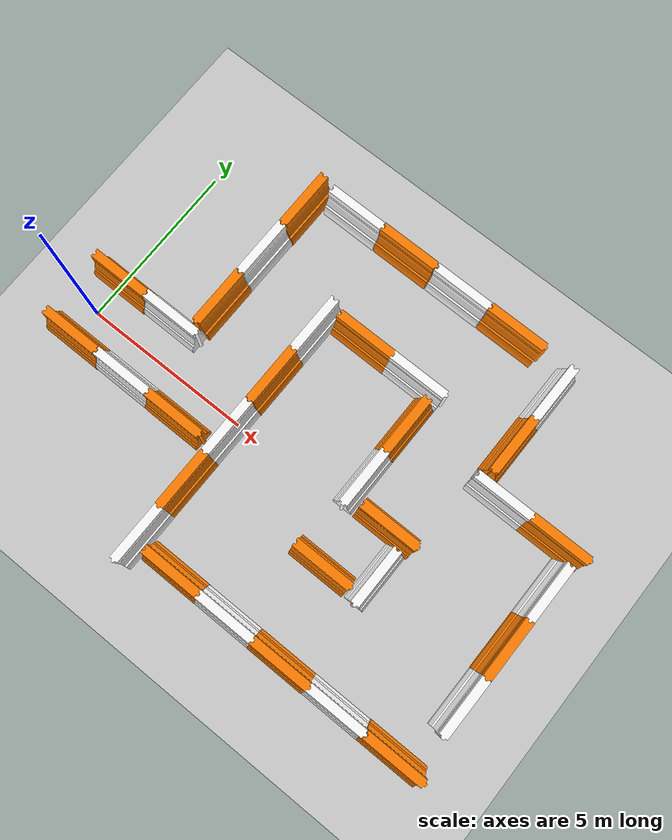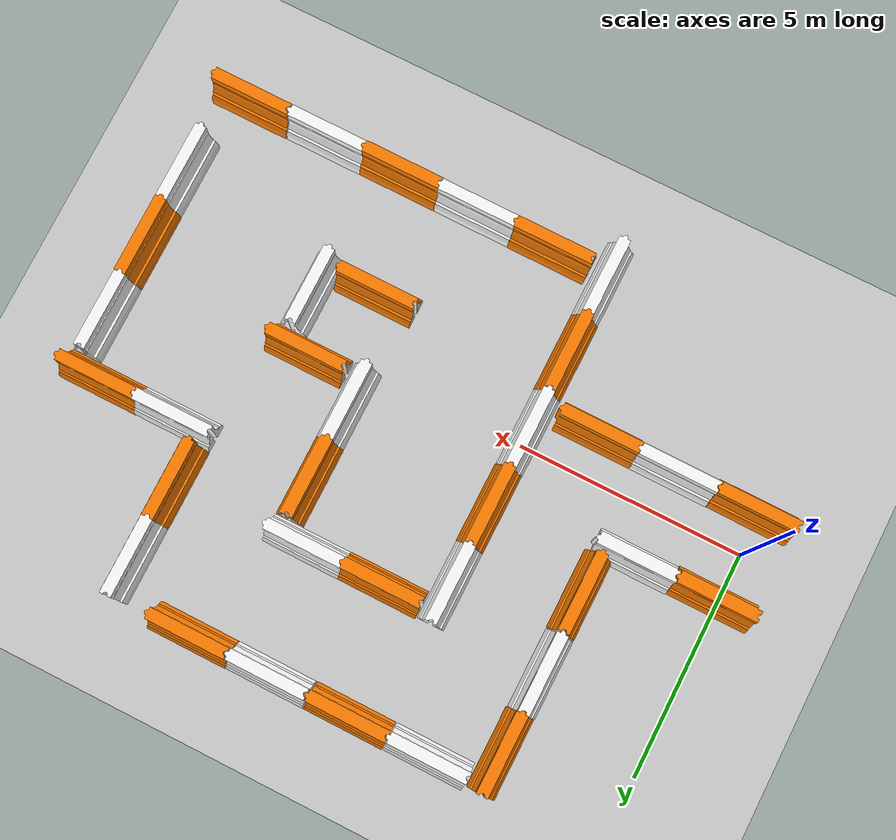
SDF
<sdf version="1.7">
 <world name="default">
  <light name="sun" type="directional">
   <pose>0 0 10 0 -0 0</pose>
   <diffuse>0.8 0.8 0.8 1</diffuse>
   <specular>0.2 0.2 0.2 1</specular>
   <attenuation>
    <range>1000</range>
    <constant>0.9</constant>
    <linear>0.01</linear>
    <quadratic>0.001</quadratic>
   </attenuation>
   <direction>-0.5 0.1 -0.9</direction>
   <spot><inner_angle>0</inner_angle><outer_angle>0</outer_angle><falloff>0</falloff></spot>
  </light>
  <model name="ground_plane">
   <static>1</static>
   <link name="link">
    <collision name="collision">
     <geometry><plane><normal>0 0 1</normal><size>100 100</size></plane></geometry>
     <surface><friction><ode><mu>100</mu><mu2>50</mu2></ode></friction></surface>
    </collision>
    <visual name="visual">
     <cast_shadows>0</cast_shadows>
     <geometry><plane><normal>0 0 1</normal><size>100 100</size></plane></geometry>
     <material>
      <script><uri>file://media/materials/scripts/gazebo.material</uri><name>Gazebo/Grey</name></script>
     </material>
    </visual>
   </link>
  </model>
  <gravity>0 0 -9.8</gravity>
  <magnetic_field>6e-06 2.3e-05 -4.2e-05</magnetic_field>
  <atmosphere type="adiabatic"/>
  <physics type="ode">
   <max_step_size>0.001</max_step_size>
   <real_time_factor>1</real_time_factor>
   <real_time_update_rate>1000</real_time_update_rate>
  </physics>
  <scene><ambient>0.4 0.4 0.4 1</ambient><background>0.7 0.7 0.7 1</background><shadows>0</shadows></scene>
  <audio><device>default</device></audio>
  <spherical_coordinates>
   <surface_model>EARTH_WGS84</surface_model>
   <latitude_deg>0</latitude_deg>
   <longitude_deg>0</longitude_deg>
   <elevation>0</elevation>
   <heading_deg>0</heading_deg>
  </spherical_coordinates>
  <model name="drc_practice_organge_jersey_barrier_clone">
   <static>1</static>
   <link name="link">
    <visual name="visual">
     <geometry>
      <mesh><uri>model://drc_practice_orange_jersey_barrier/meshes/jersey_barrier.dae</uri></mesh>
     </geometry>
    </visual>
    <collision name="collision">
     <geometry>
      <mesh><uri>model://drc_practice_orange_jersey_barrier/meshes/jersey_barrier.dae</uri></mesh>
     </geometry>
    </collision>
   </link>
   <pose>0.143463 1.08854 0 0 -0 1.5707</pose>
  </model>
  <model name="drc_practice_organge_jersey_barrier_clone_0">
   <static>1</static>
   <link name="link">
    <visual name="visual">
     <geometry>
      <mesh><uri>model://drc_practice_orange_jersey_barrier/meshes/jersey_barrier.dae</uri></mesh>
     </geometry>
    </visual>
    <collision name="collision">
     <geometry>
      <mesh><uri>model://drc_practice_orange_jersey_barrier/meshes/jersey_barrier.dae</uri></mesh>
     </geometry>
    </collision>
   </link>
   <pose>0.168443 -0.887944 0 0 -0 1.5707</pose>
  </model>
  <model name="drc_practice_white_jersey_barrier_clone">
   <static>1</static>
   <link name="link">
    <visual name="visual">
     <geometry>
      <mesh><uri>model://drc_practice_white_jersey_barrier/meshes/jersey_barrier.dae</uri></mesh>
     </geometry>
    </visual>
    <collision name="collision">
     <geometry>
      <mesh><uri>model://drc_practice_white_jersey_barrier/meshes/jersey_barrier.dae</uri></mesh>
     </geometry>
    </collision>
   </link>
   <pose>1.90595 1.10096 0 0 -0 1.5707</pose>
  </model>
  <model name="drc_practice_white_jersey_barrier_clone_0">
   <static>1</static>
   <link name="link">
    <visual name="visual">
     <geometry>
      <mesh><uri>model://drc_practice_white_jersey_barrier/meshes/jersey_barrier.dae</uri></mesh>
     </geometry>
    </visual>
    <collision name="collision">
     <geometry>
      <mesh><uri>model://drc_practice_white_jersey_barrier/meshes/jersey_barrier.dae</uri></mesh>
     </geometry>
    </collision>
   </link>
   <pose>1.9309 -0.888115 0 0 -0 1.5707</pose>
  </model>
  <model name="drc_practice_organge_jersey_barrier_clone_0_clone">
   <static>1</static>
   <link name="link">
    <visual name="visual">
     <geometry>
      <mesh><uri>model://drc_practice_orange_jersey_barrier/meshes/jersey_barrier.dae</uri></mesh>
     </geometry>
    </visual>
    <collision name="collision">
     <geometry>
      <mesh><uri>model://drc_practice_orange_jersey_barrier/meshes/jersey_barrier.dae</uri></mesh>
     </geometry>
    </collision>
   </link>
   <pose>3.6934 -0.899313 0 0 -0 1.5707</pose>
  </model>
  <model name="drc_practice_white_jersey_barrier">
   <static>1</static>
   <link name="link">
    <visual name="visual">
     <geometry>
      <mesh><uri>model://drc_practice_white_jersey_barrier/meshes/jersey_barrier.dae</uri></mesh>
     </geometry>
    </visual>
    <collision name="collision">
     <geometry>
      <mesh><uri>model://drc_practice_white_jersey_barrier/meshes/jersey_barrier.dae</uri></mesh>
     </geometry>
    </collision>
   </link>
   <pose>4.98358 -0.286652 0 0 -0 0</pose>
  </model>
  <model name="drc_practice_organge_jersey_barrier">
   <static>1</static>
   <link name="link">
    <visual name="visual">
     <geometry>
      <mesh><uri>model://drc_practice_orange_jersey_barrier/meshes/jersey_barrier.dae</uri></mesh>
     </geometry>
    </visual>
    <collision name="collision">
     <geometry>
      <mesh><uri>model://drc_practice_orange_jersey_barrier/meshes/jersey_barrier.dae</uri></mesh>
     </geometry>
    </collision>
   </link>
   <pose>2.58701 2.21833 0 0 -0 0</pose>
  </model>
  <model name="drc_practice_organge_jersey_barrier_clone_1">
   <static>1</static>
   <link name="link">
    <visual name="visual">
     <geometry>
      <mesh><uri>model://drc_practice_orange_jersey_barrier/meshes/jersey_barrier.dae</uri></mesh>
     </geometry>
    </visual>
    <collision name="collision">
     <geometry>
      <mesh><uri>model://drc_practice_orange_jersey_barrier/meshes/jersey_barrier.dae</uri></mesh>
     </geometry>
    </collision>
   </link>
   <pose>5.00371 1.47704 0 0 -0 0</pose>
  </model>
  <model name="drc_practice_white_jersey_barrier_clone_1">
   <static>1</static>
   <link name="link">
    <visual name="visual">
     <geometry>
      <mesh><uri>model://drc_practice_white_jersey_barrier/meshes/jersey_barrier.dae</uri></mesh>
     </geometry>
    </visual>
    <collision name="collision">
     <geometry>
      <mesh><uri>model://drc_practice_white_jersey_barrier/meshes/jersey_barrier.dae</uri></mesh>
     </geometry>
    </collision>
   </link>
   <pose>5.01101 3.23606 0 0 -0 0</pose>
  </model>
  <model name="drc_practice_white_jersey_barrier_clone_2">
   <static>1</static>
   <link name="link">
    <visual name="visual">
     <geometry>
      <mesh><uri>model://drc_practice_white_jersey_barrier/meshes/jersey_barrier.dae</uri></mesh>
     </geometry>
    </visual>
    <collision name="collision">
     <geometry>
      <mesh><uri>model://drc_practice_white_jersey_barrier/meshes/jersey_barrier.dae</uri></mesh>
     </geometry>
    </collision>
   </link>
   <pose>2.59255 3.99864 0 0 -0 0</pose>
  </model>
  <model name="drc_practice_organge_jersey_barrier_clone_2">
   <static>1</static>
   <link name="link">
    <visual name="visual">
     <geometry>
      <mesh><uri>model://drc_practice_orange_jersey_barrier/meshes/jersey_barrier.dae</uri></mesh>
     </geometry>
    </visual>
    <collision name="collision">
     <geometry>
      <mesh><uri>model://drc_practice_orange_jersey_barrier/meshes/jersey_barrier.dae</uri></mesh>
     </geometry>
    </collision>
   </link>
   <pose>2.61898 5.7601 0 0 -0 0</pose>
  </model>
  <model name="drc_practice_white_jersey_barrier_clone_clone">
   <static>1</static>
   <link name="link">
    <visual name="visual">
     <geometry>
      <mesh><uri>model://drc_practice_white_jersey_barrier/meshes/jersey_barrier.dae</uri></mesh>
     </geometry>
    </visual>
    <collision name="collision">
     <geometry>
      <mesh><uri>model://drc_practice_white_jersey_barrier/meshes/jersey_barrier.dae</uri></mesh>
     </geometry>
    </collision>
   </link>
   <pose>3.86178 6.45805 0 0 -0 1.5707</pose>
  </model>
  <model name="drc_practice_organge_jersey_barrier_clone_clone">
   <static>1</static>
   <link name="link">
    <visual name="visual">
     <geometry>
      <mesh><uri>model://drc_practice_orange_jersey_barrier/meshes/jersey_barrier.dae</uri></mesh>
     </geometry>
    </visual>
    <collision name="collision">
     <geometry>
      <mesh><uri>model://drc_practice_orange_jersey_barrier/meshes/jersey_barrier.dae</uri></mesh>
     </geometry>
    </collision>
   </link>
   <pose>5.6362 6.45792 0 0 -0 1.5707</pose>
  </model>
  <model name="drc_practice_organge_jersey_barrier_clone_clone_0">
   <static>1</static>
   <link name="link">
    <visual name="visual">
     <geometry>
      <mesh><uri>model://drc_practice_orange_jersey_barrier/meshes/jersey_barrier.dae</uri></mesh>
     </geometry>
    </visual>
    <collision name="collision">
     <geometry>
      <mesh><uri>model://drc_practice_orange_jersey_barrier/meshes/jersey_barrier.dae</uri></mesh>
     </geometry>
    </collision>
   </link>
   <pose>6.22374 3.83835 0 0 -0 1.5707</pose>
  </model>
  <model name="drc_practice_white_jersey_barrier_clone_clone_clone">
   <static>1</static>
   <link name="link">
    <visual name="visual">
     <geometry>
      <mesh><uri>model://drc_practice_white_jersey_barrier/meshes/jersey_barrier.dae</uri></mesh>
     </geometry>
    </visual>
    <collision name="collision">
     <geometry>
      <mesh><uri>model://drc_practice_white_jersey_barrier/meshes/jersey_barrier.dae</uri></mesh>
     </geometry>
    </collision>
   </link>
   <pose>7.42013 6.45398 0 0 -0 1.5707</pose>
  </model>
  <model name="drc_practice_organge_jersey_barrier_clone_clone_0_clone">
   <static>1</static>
   <link name="link">
    <visual name="visual">
     <geometry>
      <mesh><uri>model://drc_practice_orange_jersey_barrier/meshes/jersey_barrier.dae</uri></mesh>
     </geometry>
    </visual>
    <collision name="collision">
     <geometry>
      <mesh><uri>model://drc_practice_orange_jersey_barrier/meshes/jersey_barrier.dae</uri></mesh>
     </geometry>
    </collision>
   </link>
   <pose>9.19459 6.45381 0 0 -0 1.5707</pose>
  </model>
  <model name="drc_practice_white_jersey_barrier_clone_clone_clone_clone">
   <static>1</static>
   <link name="link">
    <visual name="visual">
     <geometry>
      <mesh><uri>model://drc_practice_white_jersey_barrier/meshes/jersey_barrier.dae</uri></mesh>
     </geometry>
    </visual>
    <collision name="collision">
     <geometry>
      <mesh><uri>model://drc_practice_white_jersey_barrier/meshes/jersey_barrier.dae</uri></mesh>
     </geometry>
    </collision>
   </link>
   <pose>7.96884 3.83607 0 0 -0 1.5707</pose>
  </model>
  <model name="drc_practice_organge_jersey_barrier_clone_1_clone">
   <static>1</static>
   <link name="link">
    <visual name="visual">
     <geometry>
      <mesh><uri>model://drc_practice_orange_jersey_barrier/meshes/jersey_barrier.dae</uri></mesh>
     </geometry>
    </visual>
    <collision name="collision">
     <geometry>
      <mesh><uri>model://drc_practice_orange_jersey_barrier/meshes/jersey_barrier.dae</uri></mesh>
     </geometry>
    </collision>
   </link>
   <pose>8.52764 2.62676 0 0 -0 0</pose>
  </model>
  <model name="drc_practice_white_jersey_barrier_clone_1_clone">
   <static>1</static>
   <link name="link">
    <visual name="visual">
     <geometry>
      <mesh><uri>model://drc_practice_white_jersey_barrier/meshes/jersey_barrier.dae</uri></mesh>
     </geometry>
    </visual>
    <collision name="collision">
     <geometry>
      <mesh><uri>model://drc_practice_white_jersey_barrier/meshes/jersey_barrier.dae</uri></mesh>
     </geometry>
    </collision>
   </link>
   <pose>10.9886 5.65587 0 0 -0 0</pose>
  </model>
  <model name="drc_practice_white_jersey_barrier_clone_1_clone_0">
   <static>1</static>
   <link name="link">
    <visual name="visual">
     <geometry>
      <mesh><uri>model://drc_practice_white_jersey_barrier/meshes/jersey_barrier.dae</uri></mesh>
     </geometry>
    </visual>
    <collision name="collision">
     <geometry>
      <mesh><uri>model://drc_practice_white_jersey_barrier/meshes/jersey_barrier.dae</uri></mesh>
     </geometry>
    </collision>
   </link>
   <pose>8.52344 0.879852 0 0 -0 0</pose>
  </model>
  <model name="drc_practice_organge_jersey_barrier_clone_1_clone_clone">
   <static>1</static>
   <link name="link">
    <visual name="visual">
     <geometry>
      <mesh><uri>model://drc_practice_orange_jersey_barrier/meshes/jersey_barrier.dae</uri></mesh>
     </geometry>
    </visual>
    <collision name="collision">
     <geometry>
      <mesh><uri>model://drc_practice_orange_jersey_barrier/meshes/jersey_barrier.dae</uri></mesh>
     </geometry>
    </collision>
   </link>
   <pose>10.9782 3.91068 0 0 -0 0</pose>
  </model>
  <model name="drc_practice_white_jersey_barrier_clone_clone_clone_clone_clone">
   <static>1</static>
   <link name="link">
    <visual name="visual">
     <geometry>
      <mesh><uri>model://drc_practice_white_jersey_barrier/meshes/jersey_barrier.dae</uri></mesh>
     </geometry>
    </visual>
    <collision name="collision">
     <geometry>
      <mesh><uri>model://drc_practice_white_jersey_barrier/meshes/jersey_barrier.dae</uri></mesh>
     </geometry>
    </collision>
   </link>
   <pose>11.5435 2.70474 0 0 -0 1.5707</pose>
  </model>
  <model name="drc_practice_organge_jersey_barrier_clone_clone_0_clone_0">
   <static>1</static>
   <link name="link">
    <visual name="visual">
     <geometry>
      <mesh><uri>model://drc_practice_orange_jersey_barrier/meshes/jersey_barrier.dae</uri></mesh>
     </geometry>
    </visual>
    <collision name="collision">
     <geometry>
      <mesh><uri>model://drc_practice_orange_jersey_barrier/meshes/jersey_barrier.dae</uri></mesh>
     </geometry>
    </collision>
   </link>
   <pose>9.76383 0.301551 0 0 -0 1.5707</pose>
  </model>
  <model name="drc_practice_organge_jersey_barrier_clone_clone_0_clone_0_clone_0">
   <static>1</static>
   <link name="link">
    <visual name="visual">
     <geometry>
      <mesh><uri>model://drc_practice_orange_jersey_barrier/meshes/jersey_barrier.dae</uri></mesh>
     </geometry>
    </visual>
    <collision name="collision">
     <geometry>
      <mesh><uri>model://drc_practice_orange_jersey_barrier/meshes/jersey_barrier.dae</uri></mesh>
     </geometry>
    </collision>
   </link>
   <pose>13.2897 2.70144 0 0 -0 1.5707</pose>
  </model>
  <model name="drc_practice_white_jersey_barrier_clone_1_clone_0_clone">
   <static>1</static>
   <link name="link">
    <visual name="visual">
     <geometry>
      <mesh><uri>model://drc_practice_white_jersey_barrier/meshes/jersey_barrier.dae</uri></mesh>
     </geometry>
    </visual>
    <collision name="collision">
     <geometry>
      <mesh><uri>model://drc_practice_white_jersey_barrier/meshes/jersey_barrier.dae</uri></mesh>
     </geometry>
    </collision>
   </link>
   <pose>13.8659 1.49085 0 0 -0 0</pose>
  </model>
  <model name="drc_practice_white_jersey_barrier_clone_1_clone_0_clone_0">
   <static>1</static>
   <link name="link">
    <visual name="visual">
     <geometry>
      <mesh><uri>model://drc_practice_white_jersey_barrier/meshes/jersey_barrier.dae</uri></mesh>
     </geometry>
    </visual>
    <collision name="collision">
     <geometry>
      <mesh><uri>model://drc_practice_white_jersey_barrier/meshes/jersey_barrier.dae</uri></mesh>
     </geometry>
    </collision>
   </link>
   <pose>10.2931 -0.89452 0 0 -0 0</pose>
  </model>
  <model name="drc_practice_organge_jersey_barrier_clone_1_clone_clone_0">
   <static>1</static>
   <link name="link">
    <visual name="visual">
     <geometry>
      <mesh><uri>model://drc_practice_orange_jersey_barrier/meshes/jersey_barrier.dae</uri></mesh>
     </geometry>
    </visual>
    <collision name="collision">
     <geometry>
      <mesh><uri>model://drc_practice_orange_jersey_barrier/meshes/jersey_barrier.dae</uri></mesh>
     </geometry>
    </collision>
   </link>
   <pose>13.8644 -0.25431 0 0 -0 0</pose>
  </model>
  <model name="drc_practice_white_jersey_barrier_clone_1_clone_0_clone_clone">
   <static>1</static>
   <link name="link">
    <visual name="visual">
     <geometry>
      <mesh><uri>model://drc_practice_white_jersey_barrier/meshes/jersey_barrier.dae</uri></mesh>
     </geometry>
    </visual>
    <collision name="collision">
     <geometry>
      <mesh><uri>model://drc_practice_white_jersey_barrier/meshes/jersey_barrier.dae</uri></mesh>
     </geometry>
    </collision>
   </link>
   <pose>13.8591 -2.01005 0 0 -0 0</pose>
  </model>
  <model name="drc_practice_organge_jersey_barrier_clone_0_clone_0">
   <static>1</static>
   <link name="link">
    <visual name="visual">
     <geometry>
      <mesh><uri>model://drc_practice_orange_jersey_barrier/meshes/jersey_barrier.dae</uri></mesh>
     </geometry>
    </visual>
    <collision name="collision">
     <geometry>
      <mesh><uri>model://drc_practice_orange_jersey_barrier/meshes/jersey_barrier.dae</uri></mesh>
     </geometry>
    </collision>
   </link>
   <pose>13.2655 -3.99906 0 0 -0 1.5707</pose>
  </model>
  <model name="drc_practice_white_jersey_barrier_clone_0_clone">
   <static>1</static>
   <link name="link">
    <visual name="visual">
     <geometry>
      <mesh><uri>model://drc_practice_white_jersey_barrier/meshes/jersey_barrier.dae</uri></mesh>
     </geometry>
    </visual>
    <collision name="collision">
     <geometry>
      <mesh><uri>model://drc_practice_white_jersey_barrier/meshes/jersey_barrier.dae</uri></mesh>
     </geometry>
    </collision>
   </link>
   <pose>11.4924 -3.99742 0 0 -0 1.5707</pose>
  </model>
  <model name="drc_practice_organge_jersey_barrier_clone_0_clone_0_clone">
   <static>1</static>
   <link name="link">
    <visual name="visual">
     <geometry>
      <mesh><uri>model://drc_practice_orange_jersey_barrier/meshes/jersey_barrier.dae</uri></mesh>
     </geometry>
    </visual>
    <collision name="collision">
     <geometry>
      <mesh><uri>model://drc_practice_orange_jersey_barrier/meshes/jersey_barrier.dae</uri></mesh>
     </geometry>
    </collision>
   </link>
   <pose>9.75451 -3.99625 0 0 -0 1.5707</pose>
  </model>
  <model name="drc_practice_organge_jersey_barrier_clone_0_clone_0_clone_0">
   <static>1</static>
   <link name="link">
    <visual name="visual">
     <geometry>
      <mesh><uri>model://drc_practice_orange_jersey_barrier/meshes/jersey_barrier.dae</uri></mesh>
     </geometry>
    </visual>
    <collision name="collision">
     <geometry>
      <mesh><uri>model://drc_practice_orange_jersey_barrier/meshes/jersey_barrier.dae</uri></mesh>
     </geometry>
    </collision>
   </link>
   <pose>9.06186 -1.4957 0 0 -0 1.5707</pose>
  </model>
  <model name="drc_practice_white_jersey_barrier_clone_0_clone_clone">
   <static>1</static>
   <link name="link">
    <visual name="visual">
     <geometry>
      <mesh><uri>model://drc_practice_white_jersey_barrier/meshes/jersey_barrier.dae</uri></mesh>
     </geometry>
    </visual>
    <collision name="collision">
     <geometry>
      <mesh><uri>model://drc_practice_white_jersey_barrier/meshes/jersey_barrier.dae</uri></mesh>
     </geometry>
    </collision>
   </link>
   <pose>7.99448 -3.98525 0 0 -0 1.5707</pose>
  </model>
  <model name="drc_practice_organge_jersey_barrier_clone_0_clone_0_clone_clone">
   <static>1</static>
   <link name="link">
    <visual name="visual">
     <geometry>
      <mesh><uri>model://drc_practice_orange_jersey_barrier/meshes/jersey_barrier.dae</uri></mesh>
     </geometry>
    </visual>
    <collision name="collision">
     <geometry>
      <mesh><uri>model://drc_practice_orange_jersey_barrier/meshes/jersey_barrier.dae</uri></mesh>
     </geometry>
    </collision>
   </link>
   <pose>6.23921 -3.97504 0 0 -0 1.5707</pose>
  </model>
  <model name="drc_practice_organge_jersey_barrier_clone_1_clone_clone_0_clone">
   <static>1</static>
   <link name="link">
    <visual name="visual">
     <geometry>
      <mesh><uri>model://drc_practice_orange_jersey_barrier/meshes/jersey_barrier.dae</uri></mesh>
     </geometry>
    </visual>
    <collision name="collision">
     <geometry>
      <mesh><uri>model://drc_practice_orange_jersey_barrier/meshes/jersey_barrier.dae</uri></mesh>
     </geometry>
    </collision>
   </link>
   <pose>4.97671 -2.04544 0 0 -0 0</pose>
  </model>
  <model name="drc_practice_white_jersey_barrier_clone_3">
   <static>1</static>
   <link name="link">
    <visual name="visual">
     <geometry>
      <mesh><uri>model://drc_practice_white_jersey_barrier/meshes/jersey_barrier.dae</uri></mesh>
     </geometry>
    </visual>
    <collision name="collision">
     <geometry>
      <mesh><uri>model://drc_practice_white_jersey_barrier/meshes/jersey_barrier.dae</uri></mesh>
     </geometry>
    </collision>
   </link>
   <pose>4.97601 -3.78926 0 0 -0 0</pose>
  </model>
 </world>
</sdf>
